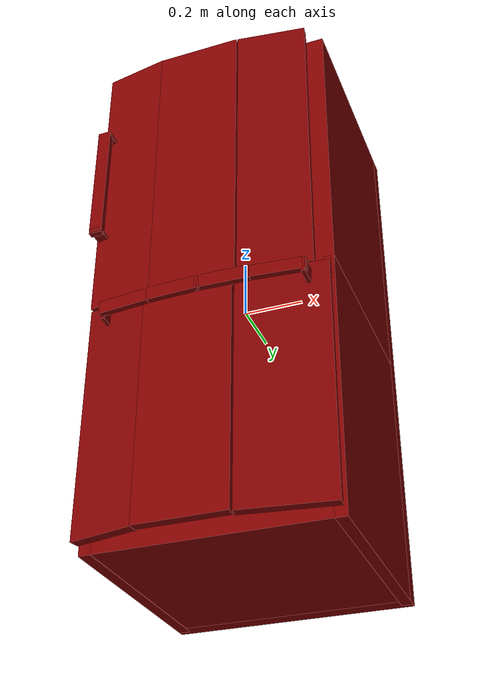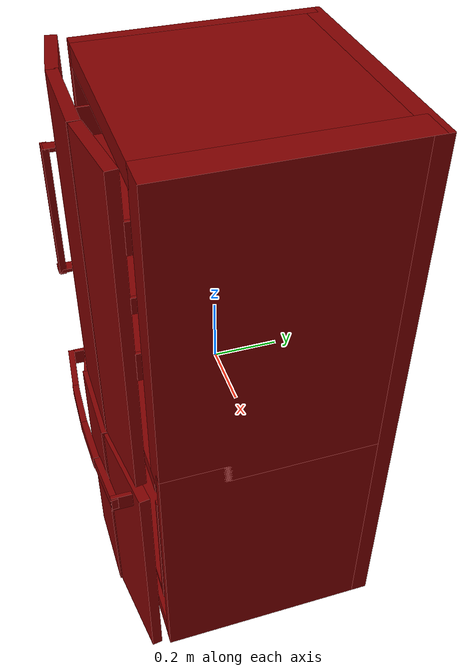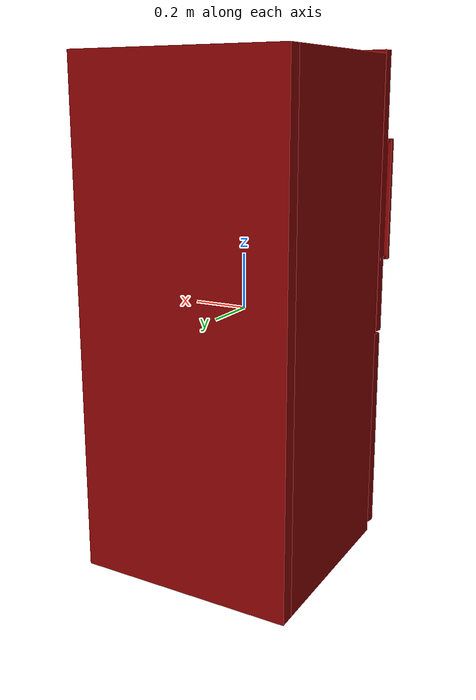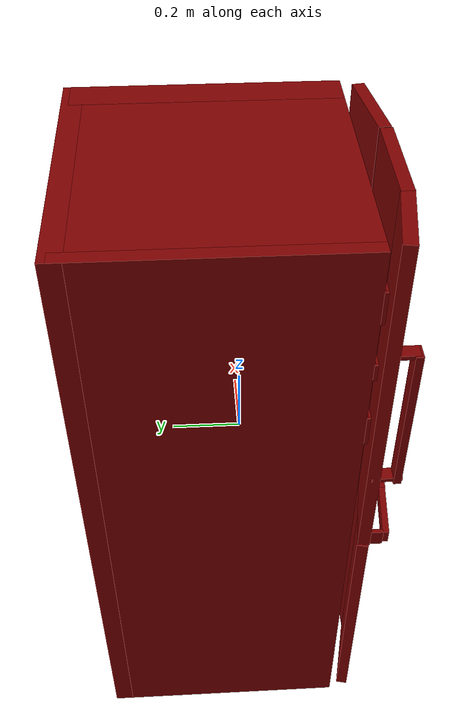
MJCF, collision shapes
<?xml version='1.0' encoding='UTF-8'?>
<mujoco model="model">
  <option timestep="0.002" gravity="0.0 0.0 -9.81"/>
  <compiler angle="radian"/>
  <asset>
    <mesh file="visuals/freezer0.obj" name="freezer0_vis"/>
    <mesh file="visuals/fridge_door.obj" name="fridge_door_vis"/>
    <mesh file="visuals/fridge_door_Clear.obj" name="fridge_door_Clear_vis"/>
    <mesh file="visuals/fridge_drawer0.obj" name="fridge_drawer0_vis"/>
    <mesh file="visuals/Body001.obj" name="Body001_vis"/>
    <texture file="visuals/T_BC001.png" name="Body001_material" type="2d"/>
    <material name="Body001_material" rgba="1 1 1 1.0" texture="Body001_material" shininess="0.141421377658844" specular="2"/>
    <texture file="visuals/T_BC001.png" name="freezer0_material" type="2d"/>
    <material name="freezer0_material" rgba="1 1 1 1.0" texture="freezer0_material" shininess="0.141421377658844" specular="2"/>
    <texture file="visuals/T_BC001.png" name="fridge_door_material" type="2d"/>
    <material name="fridge_door_material" rgba="1 1 1 1.0" texture="fridge_door_material" shininess="0.141421377658844" specular="2"/>
    <texture file="visuals/T_BC001.png" name="fridge_door_Clear_material" type="2d"/>
    <material name="fridge_door_Clear_material" rgba="1 1 1 0.3596838116645813" texture="fridge_door_Clear_material" shininess="0.5" specular="0.3103448502657381"/>
    <texture file="visuals/T_BC001.png" name="fridge_drawer0_material" type="2d"/>
    <material name="fridge_drawer0_material" rgba="1 1 1 1.0" texture="fridge_drawer0_material" shininess="0.141421377658844" specular="0.3103448502657381"/>
  </asset>
  <default>
    <default class="visual">
      <geom conaffinity="0" contype="0" group="1" type="mesh"/>
    </default>
    <default class="collision">
      <geom group="0" rgba="0.5 0 0 0.5"/>
    </default>
    <default class="spawn">
      <geom group="0" rgba="1 1 1 0.5" contype="0" conaffinity="0"/>
      <site group="0" rgba="1 1 1 0.5"/>
    </default>
    <default class="region">
      <geom group="1" conaffinity="0" contype="0" rgba="0 1 0 0"/>
    </default>
  </default>
  <worldbody>
    <body>
      <body name="object">
        <geom mesh="Body001_vis" type="mesh" solimp="0.998 0.998 0.001" solref="0.001 1" friction="0.95 0.3 0.1" class="visual" material="Body001_material"/>
        <geom class="collision" type="box" pos="-0.37859388 0.06705979 -0.01396529" size="0.019155777990818024 0.3608422577381134 0.912087619304657" quat="1.0 0.0 0.0 0.0"/>
        <geom class="collision" type="box" pos="0.38175685 0.06705979 -0.49485037" size="0.018708715215325356 0.3608422577381134 0.4312019646167755" quat="1.0 0.0 0.0 0.0"/>
        <geom class="collision" type="box" pos="0.00135793 0.41930099 -0.01396590" size="0.3991181254386902 0.027650153264403343 0.9120854735374451" quat="1.0 0.0 0.0 0.0"/>
        <geom class="collision" type="box" pos="-0.02708130 0.06705979 0.86469078" size="0.33700287342071533 0.3608422577381134 0.03337714448571205" quat="1.0 0.0 0.0 0.0"/>
        <geom class="collision" type="box" pos="-0.01268185 0.06705979 -0.14554036" size="0.35140231251716614 0.3608422577381134 0.02629208192229271" quat="1.0 0.0 0.0 0.0"/>
        <geom class="collision" type="box" pos="0.00171759 0.06731844 -0.89069986" size="0.36580175161361694 0.3605836033821106 0.034585967659950256" quat="1.0 0.0 0.0 0.0"/>
        <geom class="collision" type="box" pos="-0.02484181 0.08916095 0.19629762" size="0.33838778734207153 0.29733893275260925 0.005361652001738548" quat="1.0 0.0 0.0 0.0"/>
        <geom class="collision" type="box" pos="-0.02484181 0.09006507 0.51994365" size="0.33838778734207153 0.2972128093242645 0.005361646879464388" quat="1.0 0.0 0.0 0.0"/>
        <geom class="collision" type="box" pos="0.35295219 0.05201901 -0.72221005" size="0.013005407527089119 0.31502023339271545 0.012969376519322395" quat="1.0 0.0 0.0 0.0"/>
        <geom class="collision" type="box" pos="-0.35092383 0.05201901 -0.72221005" size="0.013005407527089119 0.31502023339271545 0.012969376519322395" quat="1.0 0.0 0.0 0.0"/>
        <geom class="collision" type="box" pos="0.34992994 0.06705979 0.38433537" size="0.05053561553359032 0.3608422577381134 0.513785719871521" quat="1.0 0.0 0.0 0.0"/>
        <body name="freezer0">
          <geom class="region" name="reg_freezer0" type="box" pos="0.0001421349999999877 0.033082675000000006 -0.45207359999999996" size="0.326336635 0.303459985 0.22692029"/>
          <joint axis="0.0 -1.0 0.0" pos="0.00122745 -0.03975281 -0.51396608" limited="true" name="freezer0_door_joint" range="0.0 0.55" type="slide" damping="1" frictionloss="1" armature=".01" stiffness="0.05"/>
          <geom mesh="freezer0_vis" type="mesh" solimp="0.998 0.998 0.001" solref="0.001 1" friction="0.95 0.3 0.1" class="visual" material="freezer0_material"/>
          <geom class="collision" type="box" pos="-0.34459056 0.03684195 -0.46196982" size="0.01303550973534584 0.3316759765148163 0.24363622069358826" quat="1.0 0.0 0.0 0.0"/>
          <geom class="collision" type="box" pos="0.34300927 0.03684195 -0.46196985" size="0.010516480542719364 0.3316761553287506 0.24363626539707184" quat="1.0 0.0 0.0 0.0"/>
          <geom class="collision" type="box" pos="-0.00030838 0.35528733 -0.46196979" size="0.3471439480781555 0.013232797384262085 0.24363629519939423" quat="1.0 0.0 0.0 0.0"/>
          <geom class="collision" type="box" pos="-0.00030838 0.03262081 -0.69561607" size="0.3471439480781555 0.32678648829460144 0.010904230177402496" quat="1.0 0.0 0.0 0.0"/>
          <geom class="collision" type="box" pos="-0.28631650 -0.35734560 -0.51521540" size="0.10743478685617447 0.016986416652798653 0.39078274369239807" quat="0.9943527579307556 0.0 0.0 -0.10612522810697556"/>
          <geom class="collision" type="box" pos="-0.04078431 -0.38404192 -0.51521540" size="0.1464429348707199 0.016875416040420532 0.39078280329704285" quat="1.0 0.0 0.0 0.0" name="freezer0_door_main"/>
          <geom class="collision" type="box" pos="0.25389216 -0.35808261 -0.51521540" size="0.14611393213272095 0.01692153885960579 0.39078280329704285" quat="0.9976747632026672 0.0 0.0 0.06815465539693832"/>
          <geom class="collision" type="box" pos="0.33916707 -0.39107417 -0.17443538" size="0.006266914773732424 0.035947706550359726 0.026796642690896988" quat="1.0 0.0 0.0 0.0" name="freezer0_door_handle_5"/>
          <geom class="collision" type="box" pos="-0.32138081 -0.38263794 -0.17443526" size="0.006266914773732424 0.0266755148768425 0.026796642690896988" quat="1.0 0.0 0.0 0.0" name="freezer0_door_handle_4"/>
          <geom class="collision" type="box" pos="-0.24010261 -0.42452811 -0.17005602" size="0.022417370229959488 0.08717069774866104 0.009740541689097881" quat="0.5234331488609314 0.4754132330417633 -0.5234331488609314 0.4754132032394409" name="freezer0_door_handle_2"/>
          <geom class="collision" type="box" pos="-0.06945356 -0.43667527 -0.17005605" size="0.022417370229959488 0.08717069774866104 0.009740541689097881" quat="0.5079357028007507 0.4919363260269165 -0.5079357028007507 0.4919362962245941" name="freezer0_door_handle_1"/>
          <geom class="collision" type="box" pos="0.08924380 -0.43676053 -0.17005607" size="0.022417370229959488 0.08717069774866104 0.009740541689097881" quat="0.5079357028007507 0.4919363260269165 0.5079357028007507 -0.4919362962245941" name="freezer0_door_handle_main"/>
          <geom class="collision" type="box" pos="0.26003779 -0.42424329 -0.17016105" size="0.08948531746864319 0.009927761740982533 0.02061539888381958" quat="0.9989737272262573 0.0 0.0 0.04529357701539993" name="freezer0_door_handle_3"/>
        </body>
        <body name="fridge_door">
          <joint axis="0.0 0.0 1.0" pos="0.36412595 -0.35200773 0.40605938" limited="true" name="fridge_door_joint" range="0.0 1.5707963267948966" type="hinge" damping="1" frictionloss="1" armature=".01" stiffness="0.05"/>
          <geom mesh="fridge_door_vis" type="mesh" solimp="0.998 0.998 0.001" solref="0.001 1" friction="0.95 0.3 0.1" class="visual" material="fridge_door_material"/>
          <geom class="collision" type="box" pos="-0.31934412 -0.27522235 0.68772942" size="0.004141536541283131 0.04857324808835983 0.04720287024974823" quat="1.0 0.0 0.0 0.0"/>
          <geom class="collision" type="box" pos="-0.01767570 -0.32052692 0.68772942" size="0.298618346452713 0.003521260339766741 0.04720290005207062" quat="1.0 0.0 0.0 0.0"/>
          <geom class="collision" type="box" pos="0.27693866 -0.27522235 0.68772942" size="0.004836234729737043 0.04857324808835983 0.04720292612910271" quat="1.0 0.0 0.0 0.0"/>
          <geom class="collision" type="box" pos="-0.02116895 -0.23130201 0.68772942" size="0.30175161361694336 0.004387729801237583 0.047202955931425095" quat="1.0 0.0 0.0 0.0"/>
          <geom class="collision" type="box" pos="-0.01838857 -0.27522235 0.64244694" size="0.29882049560546875 0.04857324808835983 0.0030051106587052345" quat="1.0 0.0 0.0 0.0"/>
          <geom class="collision" type="box" pos="-0.01952351 -0.27522235 0.46484825" size="0.29768574237823486 0.04857324808835983 0.0030051018111407757" quat="1.0 0.0 0.0 0.0"/>
          <geom class="collision" type="box" pos="-0.31934412 -0.27522235 0.48783705" size="0.00414154352620244 0.04857324808835983 0.024909714236855507" quat="1.0 0.0 0.0 0.0"/>
          <geom class="collision" type="box" pos="-0.01924005 -0.22913958 0.48783705" size="0.29762357473373413 0.002615526784211397 0.024909736588597298" quat="1.0 0.0 0.0 0.0"/>
          <geom class="collision" type="box" pos="0.27710296 -0.27522235 0.48783705" size="0.00483624218031764 0.04857324808835983 0.024909736588597298" quat="1.0 0.0 0.0 0.0"/>
          <geom class="collision" type="box" pos="-0.01877558 -0.32052692 0.48783705" size="0.29751965403556824 0.003521260339766741 0.02490975894033909" quat="1.0 0.0 0.0 0.0"/>
          <geom class="collision" type="box" pos="-0.01938256 -0.27522235 0.23565470" size="0.29782742261886597 0.04857324808835983 0.003005123697221279" quat="1.0 0.0 0.0 0.0"/>
          <geom class="collision" type="box" pos="-0.31934412 -0.27522235 0.28093714" size="0.004141549114137888 0.04857324808835983 0.047203179448843" quat="1.0 0.0 0.0 0.0"/>
          <geom class="collision" type="box" pos="-0.01909909 -0.22912981 0.28093714" size="0.29776525497436523 0.002615526784211397 0.04720320180058479" quat="1.0 0.0 0.0 0.0"/>
          <geom class="collision" type="box" pos="0.27738486 -0.27522235 0.28093714" size="0.004836245905607939 0.04857324808835983 0.047203224152326584" quat="1.0 0.0 0.0 0.0"/>
          <geom class="collision" type="box" pos="-0.01726163 -0.32052692 0.28093714" size="0.29903432726860046 0.003521260339766741 0.047203246504068375" quat="1.0 0.0 0.0 0.0"/>
          <geom class="collision" type="box" pos="0.23073789 -0.35132794 0.39952561" size="0.11987584084272385 0.01692153885960579 0.5122628211975098" quat="0.9976747632026672 0.0 0.0 0.06815465539693832"/>
          <geom class="collision" type="box" pos="-0.03792599 -0.36958383 0.39952561" size="0.14644287526607513 0.016875427216291428 0.5122628211975098" quat="1.0 0.0 0.0 0.0" name="fridge_door_main"/>
          <geom class="collision" type="box" pos="-0.28690826 -0.35252635 0.39952561" size="0.10983621329069138 0.017445452511310577 0.5122628211975098" quat="0.9968905448913574 0.0 0.0 -0.07879889011383057"/>
          <geom class="collision" type="box" pos="-0.37512966 -0.36779277 0.59554303" size="0.019148865714669228 0.036234285682439804 0.006132364273071289" quat="1.0 0.0 0.0 0.0" name="fridge_door_handle_1"/>
          <geom class="collision" type="box" pos="-0.37543916 -0.37200471 0.16461422" size="0.019458351656794548 0.041055455803871155 0.006132364273071289" quat="1.0 0.0 0.0 0.0" name="fridge_door_handle_2"/>
          <geom class="collision" type="box" pos="-0.37803047 -0.39883347 0.37796545" size="0.02204965427517891 0.01052001677453518 0.22331146895885468" quat="1.0 0.0 0.0 0.0" name="fridge_door_handle_main"/>
          <body name="fridge_door_Clear">
            <geom mesh="fridge_door_Clear_vis" type="mesh" solimp="0.998 0.998 0.001" solref="0.001 1" friction="0.95 0.3 0.1" class="visual" material="fridge_door_Clear_material"/>
            <geom class="collision" type="box" pos="-0.31934412 -0.27522235 0.68772942" size="0.004141536541283131 0.04857324808835983 0.04720287024974823" quat="1.0 0.0 0.0 0.0"/>
            <geom class="collision" type="box" pos="-0.01767570 -0.32052692 0.68772942" size="0.298618346452713 0.003521260339766741 0.04720290005207062" quat="1.0 0.0 0.0 0.0"/>
            <geom class="collision" type="box" pos="0.27693866 -0.27522235 0.68772942" size="0.004836234729737043 0.04857324808835983 0.04720292612910271" quat="1.0 0.0 0.0 0.0"/>
            <geom class="collision" type="box" pos="-0.02116895 -0.23130201 0.68772942" size="0.30175161361694336 0.004387729801237583 0.047202955931425095" quat="1.0 0.0 0.0 0.0"/>
            <geom class="collision" type="box" pos="-0.01838857 -0.27522235 0.64244694" size="0.29882049560546875 0.04857324808835983 0.0030051106587052345" quat="1.0 0.0 0.0 0.0"/>
            <geom class="collision" type="box" pos="-0.01952351 -0.27522235 0.46484825" size="0.29768574237823486 0.04857324808835983 0.0030051018111407757" quat="1.0 0.0 0.0 0.0"/>
            <geom class="collision" type="box" pos="-0.31934412 -0.27522235 0.48783705" size="0.00414154352620244 0.04857324808835983 0.024909714236855507" quat="1.0 0.0 0.0 0.0"/>
            <geom class="collision" type="box" pos="-0.01924005 -0.22913958 0.48783705" size="0.29762357473373413 0.002615526784211397 0.024909736588597298" quat="1.0 0.0 0.0 0.0"/>
            <geom class="collision" type="box" pos="0.27710296 -0.27522235 0.48783705" size="0.00483624218031764 0.04857324808835983 0.024909736588597298" quat="1.0 0.0 0.0 0.0"/>
            <geom class="collision" type="box" pos="-0.01877558 -0.32052692 0.48783705" size="0.29751965403556824 0.003521260339766741 0.02490975894033909" quat="1.0 0.0 0.0 0.0"/>
            <geom class="collision" type="box" pos="-0.01938256 -0.27522235 0.23565470" size="0.29782742261886597 0.04857324808835983 0.003005123697221279" quat="1.0 0.0 0.0 0.0"/>
            <geom class="collision" type="box" pos="-0.31934412 -0.27522235 0.28093714" size="0.004141549114137888 0.04857324808835983 0.047203179448843" quat="1.0 0.0 0.0 0.0"/>
            <geom class="collision" type="box" pos="-0.01909909 -0.22912981 0.28093714" size="0.29776525497436523 0.002615526784211397 0.04720320180058479" quat="1.0 0.0 0.0 0.0"/>
            <geom class="collision" type="box" pos="0.27738486 -0.27522235 0.28093714" size="0.004836245905607939 0.04857324808835983 0.047203224152326584" quat="1.0 0.0 0.0 0.0"/>
            <geom class="collision" type="box" pos="-0.01726163 -0.32052692 0.28093714" size="0.29903432726860046 0.003521260339766741 0.047203246504068375" quat="1.0 0.0 0.0 0.0"/>
          </body>
        </body>
        <body name="fridge_drawer0">
          <geom class="region" name="reg_fridge_drawer0" type="box" pos="-0.03223302 0.0846456 0.06124081000000001" size="0.29557334 0.26062706 0.11524735"/>
          <joint axis="0.0 -1.0 0.0" pos="-0.03335463 0.06874406 0.03349465" limited="true" name="fridge_drawer0_joint" range="0.0 0.55" type="slide" damping="1" frictionloss="1" armature=".01" stiffness="0.05"/>
          <geom mesh="fridge_drawer0_vis" type="mesh" solimp="0.998 0.998 0.001" solref="0.001 1" friction="0.95 0.3 0.1" class="visual" material="fridge_drawer0_material"/>
          <geom class="collision" type="box" pos="0.27871708 0.08161104 0.03834571" size="0.00956681091338396 0.27104490995407104 0.14328476786613464" quat="1.0 -8.146034247147327e-08 0.0 0.0"/>
          <geom class="collision" type="box" pos="-0.03314600 0.36315350 0.04276810" size="0.32032933831214905 0.011887705884873867 0.1389571577310562" quat="1.0 -8.146034247147327e-08 0.0 0.0"/>
          <geom class="collision" type="box" pos="-0.03299803 -0.19454436 0.03921908" size="0.3202410638332367 0.012720695696771145 0.1424836963415146" quat="1.0 -8.146034247147327e-08 0.0 0.0"/>
          <geom class="collision" type="box" pos="-0.34387817 0.08161104 0.03834572" size="0.010321857407689095 0.27104514837265015 0.1432848572731018" quat="1.0 -8.146034247147327e-08 0.0 0.0"/>
          <geom class="collision" type="box" pos="-0.03326068 0.08426733 -0.08533692" size="0.32039713859558105 0.29042601585388184 0.025454673916101456" quat="1.0 -8.146034247147327e-08 0.0 0.0"/>
          <geom class="collision" type="box" pos="-0.03338276 -0.21990910 0.17421491" size="0.31793490052223206 0.017213759943842888 0.005844414699822664" quat="1.0 -8.146034247147327e-08 0.0 0.0"/>
          <geom class="collision" type="box" pos="-0.03338276 -0.23311223 0.15575835" size="0.31793490052223206 0.004010598175227642 0.013608238659799099" quat="1.0 -8.146034247147327e-08 0.0 0.0"/>
        </body>
        <geom class="region" name="reg_fridge_shelf0" type="box" pos="-0.02987426500000001 0.090138635 0.357968525" size="0.324371425 0.29233110500000004 0.151273305"/>
        <geom class="region" name="reg_fridge_shelf1" type="box" pos="-0.02990580000000001 0.0902668 0.6784077" size="0.3243207 0.29220294 0.14787899"/>
        <geom class="region" name="reg_main" type="box" pos="0.0014287749999999932 0.03068120499999999 6.00000000239298e-08" size="0.400178445 0.417269925 0.92702366"/>
      </body>
    </body>
  </worldbody>
  <actuator>
    <motor name="freezer0_door_joint_actuator" joint="freezer0_door_joint" gear="50"/>
    <motor name="fridge_door_joint_actuator" joint="fridge_door_joint" gear="50"/>
    <motor name="fridge_drawer0_joint_actuator" joint="fridge_drawer0_joint" gear="50"/>
  </actuator>
</mujoco>
